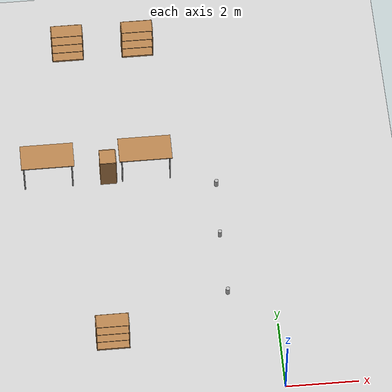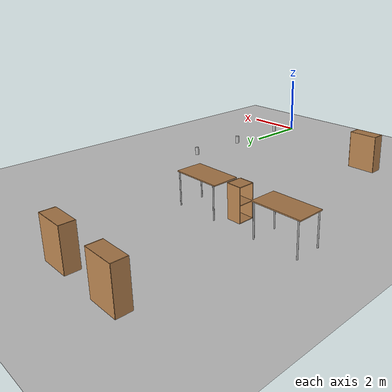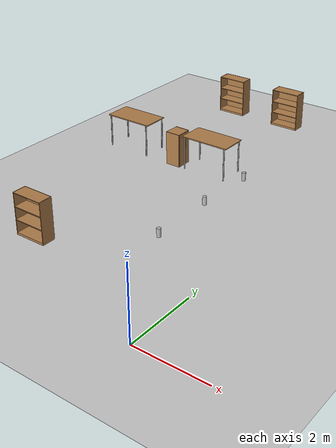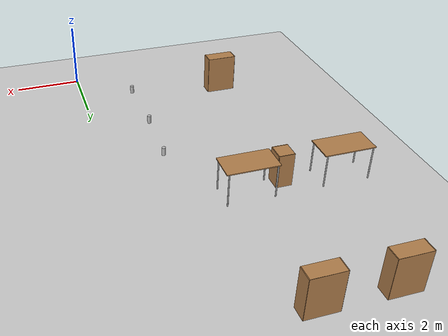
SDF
<sdf version="1.7">
 <world name="office.world">
  <model name="ground_plane">
   <static>1</static>
   <link name="link">
    <collision name="collision">
     <geometry><plane><normal>0 0 1</normal><size>100 100</size></plane></geometry>
     <surface><friction><ode><mu>100</mu><mu2>50</mu2></ode></friction></surface>
    </collision>
    <visual name="visual">
     <cast_shadows>0</cast_shadows>
     <geometry><plane><normal>0 0 1</normal><size>100 100</size></plane></geometry>
     <material>
      <script><uri>file://media/materials/scripts/gazebo.material</uri><name>Gazebo/Grey</name></script>
     </material>
    </visual>
   </link>
  </model>
  <model name="cabinet">
   <static>1</static>
   <link name="cabinet_bottom_plate">
    <inertial>
     <pose>0 0 -1 0 -0 0</pose>
     <inertia><ixx>2.05</ixx><ixy>0</ixy><ixz>0</ixz><iyy>2.05</iyy><iyz>0</iyz><izz>2.05</izz></inertia>
     <mass>25</mass>
    </inertial>
    <collision name="cabinet_bottom_plate_geom">
     <pose>0 0 0.01 0 -0 0</pose>
     <geometry><box><size>0.45 0.45 0.02</size></box></geometry>
    </collision>
    <visual name="cabinet_bottom_plate_geom_visual">
     <pose>0 0 0.01 0 -0 0</pose>
     <geometry><box><size>0.45 0.45 0.02</size></box></geometry>
     <material>
      <script><uri>file://media/materials/scripts/gazebo.material</uri><name>Gazebo/Wood</name></script>
     </material>
    </visual>
    <collision name="cabinet_bottom_plate_geom_cabinet_back_plate">
     <pose>0.235 0 0.51 0 -0 0</pose>
     <geometry><box><size>0.02 0.45 1.02</size></box></geometry>
    </collision>
    <visual name="cabinet_bottom_plate_geom_cabinet_back_plate_visual">
     <pose>0.235 0 0.51 0 -0 0</pose>
     <geometry><box><size>0.02 0.45 1.02</size></box></geometry>
     <material>
      <script><uri>file://media/materials/scripts/gazebo.material</uri><name>Gazebo/Wood</name></script>
     </material>
    </visual>
    <collision name="cabinet_bottom_plate_geom_cabinet_left_plate">
     <pose>0 0.235 0.51 0 -0 0</pose>
     <geometry><box><size>0.45 0.02 1.02</size></box></geometry>
    </collision>
    <visual name="cabinet_bottom_plate_geom_cabinet_left_plate_visual">
     <pose>0 0.235 0.51 0 -0 0</pose>
     <geometry><box><size>0.45 0.02 1.02</size></box></geometry>
     <material>
      <script><uri>file://media/materials/scripts/gazebo.material</uri><name>Gazebo/Wood</name></script>
     </material>
    </visual>
    <collision name="cabinet_bottom_plate_geom_cabinet_middle_plate">
     <pose>0 0 0.51 0 -0 0</pose>
     <geometry><box><size>0.45 0.45 0.02</size></box></geometry>
    </collision>
    <visual name="cabinet_bottom_plate_geom_cabinet_middle_plate_visual">
     <pose>0 0 0.51 0 -0 0</pose>
     <geometry><box><size>0.45 0.45 0.02</size></box></geometry>
     <material>
      <script><uri>file://media/materials/scripts/gazebo.material</uri><name>Gazebo/Wood</name></script>
     </material>
    </visual>
    <collision name="cabinet_bottom_plate_geom_cabinet_right_plate">
     <pose>0 -0.235 0.51 0 -0 0</pose>
     <geometry><box><size>0.45 0.02 1.02</size></box></geometry>
    </collision>
    <visual name="cabinet_bottom_plate_geom_cabinet_right_plate_visual">
     <pose>0 -0.235 0.51 0 -0 0</pose>
     <geometry><box><size>0.45 0.02 1.02</size></box></geometry>
     <material>
      <script><uri>file://media/materials/scripts/gazebo.material</uri><name>Gazebo/Wood</name></script>
     </material>
    </visual>
    <collision name="cabinet_bottom_plate_geom_cabinet_top_plate">
     <pose>0 0 1.01 0 -0 0</pose>
     <geometry><box><size>0.45 0.45 0.02</size></box></geometry>
    </collision>
    <visual name="cabinet_bottom_plate_geom_cabinet_top_plate_visual">
     <pose>0 0 1.01 0 -0 0</pose>
     <geometry><box><size>0.45 0.45 0.02</size></box></geometry>
     <material>
      <script><uri>file://media/materials/scripts/gazebo.material</uri><name>Gazebo/Wood</name></script>
     </material>
    </visual>
   </link>
   <pose>-4.3117 7.32168 0 0 -0 0</pose>
  </model>
  <model name="bookshelf">
   <static>1</static>
   <link name="link">
    <inertial><mass>1</mass></inertial>
    <collision name="back">
     <pose>0 0.005 0.6 0 -0 0</pose>
     <geometry><box><size>0.9 0.01 1.2</size></box></geometry>
    </collision>
    <visual name="visual1">
     <pose>0 0.005 0.6 0 -0 0</pose>
     <geometry><box><size>0.9 0.01 1.2</size></box></geometry>
     <material>
      <script><uri>file://media/materials/scripts/gazebo.material</uri><name>Gazebo/Wood</name></script>
     </material>
    </visual>
    <collision name="left_side">
     <pose>0.45 -0.195 0.6 0 -0 0</pose>
     <geometry><box><size>0.02 0.4 1.2</size></box></geometry>
    </collision>
    <visual name="visual2">
     <pose>0.45 -0.195 0.6 0 -0 0</pose>
     <geometry><box><size>0.02 0.4 1.2</size></box></geometry>
     <material>
      <script><uri>file://media/materials/scripts/gazebo.material</uri><name>Gazebo/Wood</name></script>
     </material>
    </visual>
    <collision name="right_side">
     <pose>-0.45 -0.195 0.6 0 -0 0</pose>
     <geometry><box><size>0.02 0.4 1.2</size></box></geometry>
    </collision>
    <visual name="visual3">
     <pose>-0.45 -0.195 0.6 0 -0 0</pose>
     <geometry><box><size>0.02 0.4 1.2</size></box></geometry>
     <material>
      <script><uri>file://media/materials/scripts/gazebo.material</uri><name>Gazebo/Wood</name></script>
     </material>
    </visual>
    <collision name="bottom">
     <pose>0 -0.195 0.03 0 -0 0</pose>
     <geometry><box><size>0.88 0.4 0.06</size></box></geometry>
    </collision>
    <visual name="visual4">
     <pose>0 -0.195 0.03 0 -0 0</pose>
     <geometry><box><size>0.88 0.4 0.06</size></box></geometry>
     <material>
      <script><uri>file://media/materials/scripts/gazebo.material</uri><name>Gazebo/Wood</name></script>
     </material>
    </visual>
    <collision name="top">
     <pose>0 -0.195 1.19 0 -0 0</pose>
     <geometry><box><size>0.88 0.4 0.02</size></box></geometry>
    </collision>
    <visual name="visual5">
     <pose>0 -0.195 1.19 0 -0 0</pose>
     <geometry><box><size>0.88 0.4 0.02</size></box></geometry>
     <material>
      <script><uri>file://media/materials/scripts/gazebo.material</uri><name>Gazebo/Wood</name></script>
     </material>
    </visual>
    <collision name="low_shelf">
     <pose>0 -0.195 0.43 0 -0 0</pose>
     <geometry><box><size>0.88 0.4 0.02</size></box></geometry>
    </collision>
    <visual name="visual6">
     <pose>0 -0.195 0.43 0 -0 0</pose>
     <geometry><box><size>0.88 0.4 0.02</size></box></geometry>
     <material>
      <script><uri>file://media/materials/scripts/gazebo.material</uri><name>Gazebo/Wood</name></script>
     </material>
    </visual>
    <collision name="high_shelf">
     <pose>0 -0.195 0.8 0 -0 0</pose>
     <geometry><box><size>0.88 0.4 0.02</size></box></geometry>
    </collision>
    <visual name="visual7">
     <pose>0 -0.195 0.8 0 -0 0</pose>
     <geometry><box><size>0.88 0.4 0.02</size></box></geometry>
     <material>
      <script><uri>file://media/materials/scripts/gazebo.material</uri><name>Gazebo/Wood</name></script>
     </material>
    </visual>
   </link>
   <pose>-5.16485 11.9017 0 0 -0 0</pose>
  </model>
  <model name="bookshelf_0">
   <static>1</static>
   <link name="link">
    <inertial><mass>1</mass></inertial>
    <collision name="back">
     <pose>0 0.005 0.6 0 -0 0</pose>
     <geometry><box><size>0.9 0.01 1.2</size></box></geometry>
    </collision>
    <visual name="visual1">
     <pose>0 0.005 0.6 0 -0 0</pose>
     <geometry><box><size>0.9 0.01 1.2</size></box></geometry>
     <material>
      <script><uri>file://media/materials/scripts/gazebo.material</uri><name>Gazebo/Wood</name></script>
     </material>
    </visual>
    <collision name="left_side">
     <pose>0.45 -0.195 0.6 0 -0 0</pose>
     <geometry><box><size>0.02 0.4 1.2</size></box></geometry>
    </collision>
    <visual name="visual2">
     <pose>0.45 -0.195 0.6 0 -0 0</pose>
     <geometry><box><size>0.02 0.4 1.2</size></box></geometry>
     <material>
      <script><uri>file://media/materials/scripts/gazebo.material</uri><name>Gazebo/Wood</name></script>
     </material>
    </visual>
    <collision name="right_side">
     <pose>-0.45 -0.195 0.6 0 -0 0</pose>
     <geometry><box><size>0.02 0.4 1.2</size></box></geometry>
    </collision>
    <visual name="visual3">
     <pose>-0.45 -0.195 0.6 0 -0 0</pose>
     <geometry><box><size>0.02 0.4 1.2</size></box></geometry>
     <material>
      <script><uri>file://media/materials/scripts/gazebo.material</uri><name>Gazebo/Wood</name></script>
     </material>
    </visual>
    <collision name="bottom">
     <pose>0 -0.195 0.03 0 -0 0</pose>
     <geometry><box><size>0.88 0.4 0.06</size></box></geometry>
    </collision>
    <visual name="visual4">
     <pose>0 -0.195 0.03 0 -0 0</pose>
     <geometry><box><size>0.88 0.4 0.06</size></box></geometry>
     <material>
      <script><uri>file://media/materials/scripts/gazebo.material</uri><name>Gazebo/Wood</name></script>
     </material>
    </visual>
    <collision name="top">
     <pose>0 -0.195 1.19 0 -0 0</pose>
     <geometry><box><size>0.88 0.4 0.02</size></box></geometry>
    </collision>
    <visual name="visual5">
     <pose>0 -0.195 1.19 0 -0 0</pose>
     <geometry><box><size>0.88 0.4 0.02</size></box></geometry>
     <material>
      <script><uri>file://media/materials/scripts/gazebo.material</uri><name>Gazebo/Wood</name></script>
     </material>
    </visual>
    <collision name="low_shelf">
     <pose>0 -0.195 0.43 0 -0 0</pose>
     <geometry><box><size>0.88 0.4 0.02</size></box></geometry>
    </collision>
    <visual name="visual6">
     <pose>0 -0.195 0.43 0 -0 0</pose>
     <geometry><box><size>0.88 0.4 0.02</size></box></geometry>
     <material>
      <script><uri>file://media/materials/scripts/gazebo.material</uri><name>Gazebo/Wood</name></script>
     </material>
    </visual>
    <collision name="high_shelf">
     <pose>0 -0.195 0.8 0 -0 0</pose>
     <geometry><box><size>0.88 0.4 0.02</size></box></geometry>
    </collision>
    <visual name="visual7">
     <pose>0 -0.195 0.8 0 -0 0</pose>
     <geometry><box><size>0.88 0.4 0.02</size></box></geometry>
     <material>
      <script><uri>file://media/materials/scripts/gazebo.material</uri><name>Gazebo/Wood</name></script>
     </material>
    </visual>
   </link>
   <pose>-3.12828 11.8826 0 0 -0 0</pose>
  </model>
  <model name="beer">
   <link name="link">
    <pose>0 0 0.115 0 -0 0</pose>
    <inertial>
     <mass>0.39</mass>
     <inertia><ixx>0.00058</ixx><ixy>0</ixy><ixz>0</ixz><iyy>0.00058</iyy><iyz>0</iyz><izz>0.00019</izz></inertia>
    </inertial>
    <collision name="collision">
     <geometry><cylinder><radius>0.055</radius><length>0.23</length></cylinder></geometry>
    </collision>
    <visual name="visual">
     <geometry><cylinder><radius>0.055</radius><length>0.23</length></cylinder></geometry>
     <material>
      <script>
       <uri>model://beer/materials/scripts</uri>
       <uri>model://beer/materials/textures</uri>
       <name>Beer/Diffuse</name>
      </script>
     </material>
    </visual>
   </link>
   <pose>-1.31931 6.23628 1.00499 -3.14158 -1.1e-05 -0.392211</pose>
  </model>
  <model name="beer_0">
   <link name="link">
    <pose>0 0 0.115 0 -0 0</pose>
    <inertial>
     <mass>0.39</mass>
     <inertia><ixx>0.00058</ixx><ixy>0</ixy><ixz>0</ixz><iyy>0.00058</iyy><iyz>0</iyz><izz>0.00019</izz></inertia>
    </inertial>
    <collision name="collision">
     <geometry><cylinder><radius>0.055</radius><length>0.23</length></cylinder></geometry>
    </collision>
    <visual name="visual">
     <geometry><cylinder><radius>0.055</radius><length>0.23</length></cylinder></geometry>
     <material>
      <script>
       <uri>model://beer/materials/scripts</uri>
       <uri>model://beer/materials/textures</uri>
       <name>Beer/Diffuse</name>
      </script>
     </material>
    </visual>
   </link>
   <pose>-1.38207 4.54183 1.005 3.14157 1e-05 -3.13102</pose>
  </model>
  <model name="beer_1">
   <link name="link">
    <pose>0 0 0.115 0 -0 0</pose>
    <inertial>
     <mass>0.39</mass>
     <inertia><ixx>0.00058</ixx><ixy>0</ixy><ixz>0</ixz><iyy>0.00058</iyy><iyz>0</iyz><izz>0.00019</izz></inertia>
    </inertial>
    <collision name="collision">
     <geometry><cylinder><radius>0.055</radius><length>0.23</length></cylinder></geometry>
    </collision>
    <visual name="visual">
     <geometry><cylinder><radius>0.055</radius><length>0.23</length></cylinder></geometry>
     <material>
      <script>
       <uri>model://beer/materials/scripts</uri>
       <uri>model://beer/materials/textures</uri>
       <name>Beer/Diffuse</name>
      </script>
     </material>
    </visual>
   </link>
   <pose>-1.34397 2.65667 1.00499 -3.14158 3.2e-05 -3.13092</pose>
  </model>
  <model name="bookshelf_3">
   <static>1</static>
   <link name="link">
    <inertial><mass>1</mass></inertial>
    <collision name="back">
     <pose>0 0.005 0.6 0 -0 0</pose>
     <geometry><box><size>0.9 0.01 1.2</size></box></geometry>
    </collision>
    <visual name="visual1">
     <pose>0 0.005 0.6 0 -0 0</pose>
     <geometry><box><size>0.9 0.01 1.2</size></box></geometry>
     <material>
      <script><uri>file://media/materials/scripts/gazebo.material</uri><name>Gazebo/Wood</name></script>
     </material>
    </visual>
    <collision name="left_side">
     <pose>0.45 -0.195 0.6 0 -0 0</pose>
     <geometry><box><size>0.02 0.4 1.2</size></box></geometry>
    </collision>
    <visual name="visual2">
     <pose>0.45 -0.195 0.6 0 -0 0</pose>
     <geometry><box><size>0.02 0.4 1.2</size></box></geometry>
     <material>
      <script><uri>file://media/materials/scripts/gazebo.material</uri><name>Gazebo/Wood</name></script>
     </material>
    </visual>
    <collision name="right_side">
     <pose>-0.45 -0.195 0.6 0 -0 0</pose>
     <geometry><box><size>0.02 0.4 1.2</size></box></geometry>
    </collision>
    <visual name="visual3">
     <pose>-0.45 -0.195 0.6 0 -0 0</pose>
     <geometry><box><size>0.02 0.4 1.2</size></box></geometry>
     <material>
      <script><uri>file://media/materials/scripts/gazebo.material</uri><name>Gazebo/Wood</name></script>
     </material>
    </visual>
    <collision name="bottom">
     <pose>0 -0.195 0.03 0 -0 0</pose>
     <geometry><box><size>0.88 0.4 0.06</size></box></geometry>
    </collision>
    <visual name="visual4">
     <pose>0 -0.195 0.03 0 -0 0</pose>
     <geometry><box><size>0.88 0.4 0.06</size></box></geometry>
     <material>
      <script><uri>file://media/materials/scripts/gazebo.material</uri><name>Gazebo/Wood</name></script>
     </material>
    </visual>
    <collision name="top">
     <pose>0 -0.195 1.19 0 -0 0</pose>
     <geometry><box><size>0.88 0.4 0.02</size></box></geometry>
    </collision>
    <visual name="visual5">
     <pose>0 -0.195 1.19 0 -0 0</pose>
     <geometry><box><size>0.88 0.4 0.02</size></box></geometry>
     <material>
      <script><uri>file://media/materials/scripts/gazebo.material</uri><name>Gazebo/Wood</name></script>
     </material>
    </visual>
    <collision name="low_shelf">
     <pose>0 -0.195 0.43 0 -0 0</pose>
     <geometry><box><size>0.88 0.4 0.02</size></box></geometry>
    </collision>
    <visual name="visual6">
     <pose>0 -0.195 0.43 0 -0 0</pose>
     <geometry><box><size>0.88 0.4 0.02</size></box></geometry>
     <material>
      <script><uri>file://media/materials/scripts/gazebo.material</uri><name>Gazebo/Wood</name></script>
     </material>
    </visual>
    <collision name="high_shelf">
     <pose>0 -0.195 0.8 0 -0 0</pose>
     <geometry><box><size>0.88 0.4 0.02</size></box></geometry>
    </collision>
    <visual name="visual7">
     <pose>0 -0.195 0.8 0 -0 0</pose>
     <geometry><box><size>0.88 0.4 0.02</size></box></geometry>
     <material>
      <script><uri>file://media/materials/scripts/gazebo.material</uri><name>Gazebo/Wood</name></script>
     </material>
    </visual>
   </link>
   <pose>-4.58865 2 0 0 -0 0</pose>
  </model>
  <model name="table_1">
   <static>1</static>
   <link name="link">
    <collision name="surface">
     <pose>0 0 1 0 -0 0</pose>
     <geometry><box><size>1.5 0.8 0.03</size></box></geometry>
     <surface><friction><ode><mu>0.6</mu><mu2>0.6</mu2></ode></friction></surface>
    </collision>
    <visual name="visual1">
     <pose>0 0 1 0 -0 0</pose>
     <geometry><box><size>1.5 0.8 0.03</size></box></geometry>
     <material>
      <script><uri>file://media/materials/scripts/gazebo.material</uri><name>Gazebo/Wood</name></script>
     </material>
    </visual>
    <collision name="front_left_leg">
     <pose>0.68 0.38 0.5 0 -0 0</pose>
     <geometry><cylinder><radius>0.02</radius><length>1</length></cylinder></geometry>
    </collision>
    <visual name="front_left_leg">
     <pose>0.68 0.38 0.5 0 -0 0</pose>
     <geometry><cylinder><radius>0.02</radius><length>1</length></cylinder></geometry>
     <material>
      <script><uri>file://media/materials/scripts/gazebo.material</uri><name>Gazebo/Grey</name></script>
     </material>
    </visual>
    <collision name="front_right_leg">
     <pose>0.68 -0.38 0.5 0 -0 0</pose>
     <geometry><cylinder><radius>0.02</radius><length>1</length></cylinder></geometry>
    </collision>
    <visual name="front_right_leg">
     <pose>0.68 -0.38 0.5 0 -0 0</pose>
     <geometry><cylinder><radius>0.02</radius><length>1</length></cylinder></geometry>
     <material>
      <script><uri>file://media/materials/scripts/gazebo.material</uri><name>Gazebo/Grey</name></script>
     </material>
    </visual>
    <collision name="back_right_leg">
     <pose>-0.68 -0.38 0.5 0 -0 0</pose>
     <geometry><cylinder><radius>0.02</radius><length>1</length></cylinder></geometry>
    </collision>
    <visual name="back_right_leg">
     <pose>-0.68 -0.38 0.5 0 -0 0</pose>
     <geometry><cylinder><radius>0.02</radius><length>1</length></cylinder></geometry>
     <material>
      <script><uri>file://media/materials/scripts/gazebo.material</uri><name>Gazebo/Grey</name></script>
     </material>
    </visual>
    <collision name="back_left_leg">
     <pose>-0.68 0.38 0.5 0 -0 0</pose>
     <geometry><cylinder><radius>0.02</radius><length>1</length></cylinder></geometry>
    </collision>
    <visual name="back_left_leg">
     <pose>-0.68 0.38 0.5 0 -0 0</pose>
     <geometry><cylinder><radius>0.02</radius><length>1</length></cylinder></geometry>
     <material>
      <script><uri>file://media/materials/scripts/gazebo.material</uri><name>Gazebo/Grey</name></script>
     </material>
    </visual>
   </link>
   <pose>-6.00794 7.49423 0 0 -0 0</pose>
  </model>
  <model name="table_2">
   <static>1</static>
   <link name="link">
    <collision name="surface">
     <pose>0 0 1 0 -0 0</pose>
     <geometry><box><size>1.5 0.8 0.03</size></box></geometry>
     <surface><friction><ode><mu>0.6</mu><mu2>0.6</mu2></ode></friction></surface>
    </collision>
    <visual name="visual1">
     <pose>0 0 1 0 -0 0</pose>
     <geometry><box><size>1.5 0.8 0.03</size></box></geometry>
     <material>
      <script><uri>file://media/materials/scripts/gazebo.material</uri><name>Gazebo/Wood</name></script>
     </material>
    </visual>
    <collision name="front_left_leg">
     <pose>0.68 0.38 0.5 0 -0 0</pose>
     <geometry><cylinder><radius>0.02</radius><length>1</length></cylinder></geometry>
    </collision>
    <visual name="front_left_leg">
     <pose>0.68 0.38 0.5 0 -0 0</pose>
     <geometry><cylinder><radius>0.02</radius><length>1</length></cylinder></geometry>
     <material>
      <script><uri>file://media/materials/scripts/gazebo.material</uri><name>Gazebo/Grey</name></script>
     </material>
    </visual>
    <collision name="front_right_leg">
     <pose>0.68 -0.38 0.5 0 -0 0</pose>
     <geometry><cylinder><radius>0.02</radius><length>1</length></cylinder></geometry>
    </collision>
    <visual name="front_right_leg">
     <pose>0.68 -0.38 0.5 0 -0 0</pose>
     <geometry><cylinder><radius>0.02</radius><length>1</length></cylinder></geometry>
     <material>
      <script><uri>file://media/materials/scripts/gazebo.material</uri><name>Gazebo/Grey</name></script>
     </material>
    </visual>
    <collision name="back_right_leg">
     <pose>-0.68 -0.38 0.5 0 -0 0</pose>
     <geometry><cylinder><radius>0.02</radius><length>1</length></cylinder></geometry>
    </collision>
    <visual name="back_right_leg">
     <pose>-0.68 -0.38 0.5 0 -0 0</pose>
     <geometry><cylinder><radius>0.02</radius><length>1</length></cylinder></geometry>
     <material>
      <script><uri>file://media/materials/scripts/gazebo.material</uri><name>Gazebo/Grey</name></script>
     </material>
    </visual>
    <collision name="back_left_leg">
     <pose>-0.68 0.38 0.5 0 -0 0</pose>
     <geometry><cylinder><radius>0.02</radius><length>1</length></cylinder></geometry>
    </collision>
    <visual name="back_left_leg">
     <pose>-0.68 0.38 0.5 0 -0 0</pose>
     <geometry><cylinder><radius>0.02</radius><length>1</length></cylinder></geometry>
     <material>
      <script><uri>file://media/materials/scripts/gazebo.material</uri><name>Gazebo/Grey</name></script>
     </material>
    </visual>
   </link>
   <pose>-3.22919 7.51433 0 0 -0 0</pose>
  </model>
 </world>
</sdf>
